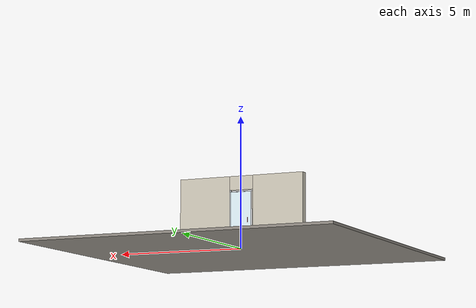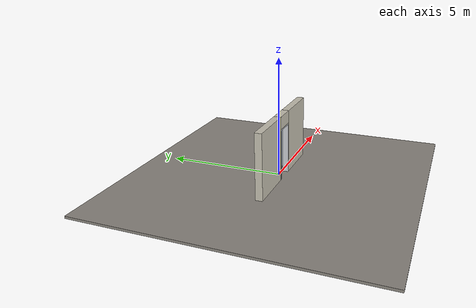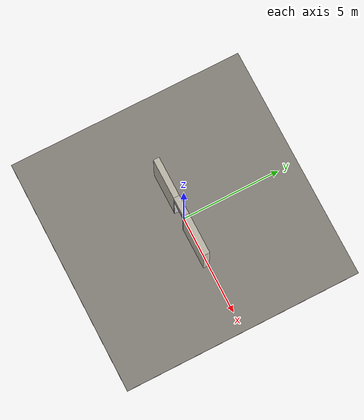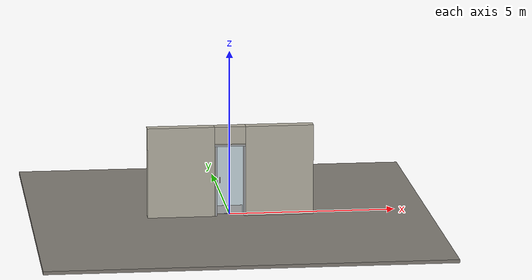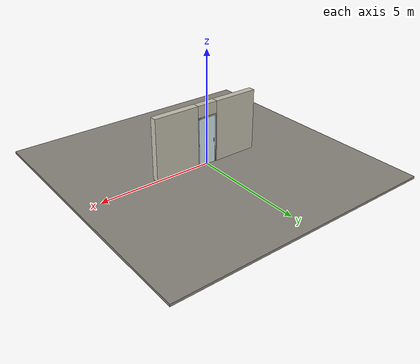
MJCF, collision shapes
<?xml version="1.0" ?>
<mujoco model="db0324_swing_single_simple">
  <compiler angle="radian" meshdir="../../hardware" texturedir="../../textures" autolimits="true" inertiafromgeom="false"/>
  <option timestep="0.002" integrator="implicitfast" cone="elliptic" impratio="10" noslip_iterations="3">
    <flag multiccd="enable"/>
  </option>
  <size memory="16M"/>
  <default>
    <geom condim="4" solref="0.005 1" solimp="0.95 0.99 0.001"/>
    <joint solreflimit="0.005 1" solimplimit="0.95 0.99 0.001"/>
    <tendon solreflimit="0.005 1"/>
    <equality solref="0.002 1"/>
  </default>
  <visual>
    <headlight ambient="0.4 0.4 0.4" diffuse="0.7 0.7 0.7" specular="0.2 0.2 0.2"/>
    <quality shadowsize="4096"/>
    <map znear="0.01" zfar="60"/>
  </visual>
  <asset>
    <mesh name="pull_1e5d69a91a" file="pull_1e5d69a91a.obj"/>
    <material name="mat_floor" rgba="0.55 0.53 0.5 1" specular="0.2" shininess="0.15" reflectance="0"/>
    <material name="mat_wall" rgba="0.78 0.76 0.7 1" specular="0.2" shininess="0.1" reflectance="0"/>
    <material name="mat_leaf" rgba="0.85 0.92 0.95 0.25" specular="0.2" shininess="0.95" reflectance="0.1"/>
    <material name="mat_glass_leaf" rgba="0.85 0.92 0.95 0.25" specular="0.2" shininess="0.95" reflectance="0.1"/>
    <material name="mat_patch" rgba="0.75 0.76 0.77 1" specular="0.8" shininess="0.65" reflectance="0.4"/>
    <material name="mat_hinge" rgba="0.65 0.66 0.68 1" specular="0.74" shininess="0.5" reflectance="0.36"/>
    <material name="mat_op_stainless" rgba="0.75 0.76 0.77 1" specular="0.8" shininess="0.65" reflectance="0.4"/>
    <material name="mat_frame" rgba="0.8 0.81 0.83 1" specular="0.8" shininess="0.6" reflectance="0.4"/>
    <material name="mat_closer" rgba="0.75 0.76 0.77 1" specular="0.8" shininess="0.65" reflectance="0.4"/>
    <material name="mat_kick" rgba="0.75 0.76 0.77 1" specular="0.8" shininess="0.65" reflectance="0.4"/>
    <material name="mat_sign" rgba="0.75 0.76 0.77 1" specular="0.8" shininess="0.65" reflectance="0.4"/>
    <texture name="skybox" type="skybox" builtin="gradient" rgb1="0.6 0.7 0.85" rgb2="0.9 0.92 0.95" width="256" height="256"/>
  </asset>
  <worldbody>
    <light name="sun" pos="1.5 -2.5 4" dir="-0.3 0.5 -0.8" directional="true" diffuse="0.8 0.8 0.8" specular="0.3 0.3 0.3" castshadow="true"/>
    <light name="fill" pos="-1.5 2.5 3" dir="0.3 -0.5 -0.7" directional="true" diffuse="0.35 0.35 0.4" castshadow="false"/>
    <camera name="robot_view" pos="0 -2.758312 1.812087" xyaxes="1 0 0 0 0.26963 0.962964" fovy="52"/>
    <camera name="far_view" pos="0 2.517313 1.812087" xyaxes="-1 0 0 0 -0.26963 0.962964" fovy="52"/>
    <camera name="iso" pos="-2.004737 -2.336262 2.234138" xyaxes="0.741536 -0.670913 0 0.242917 0.268487 0.932151" fovy="46"/>
    <camera name="detail_handle" pos="-0.122 -0.8825 1.347" xyaxes="0.97561 0.219512 0 -0.070934 0.315262 0.94635" fovy="38"/>
    <geom name="floor" type="box" size="6 6 0.05" pos="0 0 -0.05" material="mat_floor" group="0" contype="1" conaffinity="1" friction="0.8 0.005 0.0001" density="2400"/>
    <geom name="wall_left" type="box" size="1.0065 0.15 1.3735" pos="-1.4935 -0.1205 1.3735" material="mat_wall" group="0" contype="1" conaffinity="1" friction="0.6 0.005 0.0001" density="800"/>
    <geom name="wall_right" type="box" size="1.0215 0.15 1.3735" pos="1.4785 -0.1205 1.3735" material="mat_wall" group="0" contype="1" conaffinity="1" friction="0.6 0.005 0.0001" density="800"/>
    <geom name="wall_header" type="box" size="0.472 0.15 0.2625" pos="-0.015 -0.1205 2.4845" material="mat_wall" group="0" contype="1" conaffinity="1" friction="0.6 0.005 0.0001" density="800"/>
    <geom name="pivot_bottom_socket" type="box" size="0.035 0.035 0.0085" pos="0.409 0.0295 -0.0015" material="mat_hinge" group="1" contype="0" conaffinity="0" density="7850"/>
    <geom name="pivot_top_bracket" type="box" size="0.035 0.035 0.0355" pos="0.409 0.0295 2.1865" material="mat_hinge" group="1" contype="0" conaffinity="0" density="7850"/>
    <geom name="jamb_hinge" type="box" size="0.0225 0.15 1.0735" pos="0.4345 -0.1205 1.0735" material="mat_frame" group="0" contype="1" conaffinity="1" friction="0.6 0.005 0.0001" density="300"/>
    <geom name="jamb_strike" type="box" size="0.0225 0.15 1.0735" pos="-0.4345 -0.1205 1.0735" material="mat_frame" group="0" contype="1" conaffinity="1" friction="0.6 0.005 0.0001" density="300"/>
    <geom name="stud_strike" type="box" size="0.015 0.15 1.0735" pos="-0.472 -0.1205 1.0735" material="mat_wall" group="0" contype="1" conaffinity="1" friction="0.6 0.005 0.0001" density="500"/>
    <geom name="jamb_head" type="box" size="0.472 0.15 0.0225" pos="-0.015 -0.1205 2.1695" material="mat_frame" group="0" contype="1" conaffinity="1" friction="0.6 0.005 0.0001" density="300"/>
    <geom name="head_stud" type="box" size="0.472 0.15 0.015" pos="-0.015 -0.1205 2.207" material="mat_wall" group="0" contype="1" conaffinity="1" friction="0.6 0.005 0.0001" density="500"/>
    <geom name="floor_spring_cover" type="box" size="0.17 0.06 0.002" pos="0.292 0 0.002" material="mat_closer" group="1" contype="0" conaffinity="0" density="7900"/>
    <site name="approach_point" pos="0 -1.5 0" quat="1 0 0 0" size="0.05" rgba="0.2 0.9 0.2 0.5" group="4"/>
    <site name="goal_point" pos="0 1.5 0" quat="1 0 0 0" size="0.05" rgba="0.2 0.9 0.2 0.5" group="4"/>
    <site name="door_plane_center" pos="0 0 1.0735" quat="1 0 0 0" size="0.02" rgba="0.2 0.9 0.2 0.5" group="4"/>
    <body name="leaf" pos="0.412 0 0">
      <inertial pos="-0.416329 -0.000783 1.044566" mass="88.498653" quat="-0.499471 0.5004 0.500503 0.499625" diaginertia="4.912378482 34.566824301 39.435004867"/>
      <joint name="leaf_hinge" type="hinge" axis="0 0 -1" pos="-0.003 0.0295 0" limited="true" range="0 1.570796" solreflimit="0.02 1" damping="8.168374" frictionloss="1.826828" stiffness="19.945297" springref="-1.966378" armature="0.02"/>
      <geom name="leaf_glass" type="box" size="0.4065 0.0225 1.067" pos="-0.4125 0 1.076" material="mat_glass_leaf" group="0" contype="1" conaffinity="1" friction="0.4 0.005 0.0001" density="1"/>
      <geom name="leaf_pull_n" type="mesh" mesh="pull_1e5d69a91a" pos="-0.714 -0.0225 1.067" quat="0 0 -0.707107 0.707107" material="mat_op_stainless" group="1" contype="0" conaffinity="0" density="3000"/>
      <geom name="leaf_pull_col_n" type="capsule" size="0.0095 0.08" pos="-0.714 -0.0825 1.067" material="mat_op_stainless" group="3" contype="1" conaffinity="1" rgba="0.8 0.3 0.3 0.25" friction="0.7 0.01 0.0001" density="3000"/>
      <geom name="leaf_pull_p" type="mesh" mesh="pull_1e5d69a91a" pos="-0.714 0.0225 1.067" quat="0 0 0.707107 0.707107" material="mat_op_stainless" group="1" contype="0" conaffinity="0" density="3000"/>
      <geom name="leaf_pull_col_p" type="capsule" size="0.0095 0.08" pos="-0.714 0.0825 1.067" material="mat_op_stainless" group="3" contype="1" conaffinity="1" rgba="0.8 0.3 0.3 0.25" friction="0.7 0.01 0.0001" density="3000"/>
      <geom name="kick_plate_n" type="box" size="0.3765 0.0008 0.125" pos="-0.4125 -0.0233 0.144" material="mat_kick" group="2" contype="0" conaffinity="0" density="7900"/>
      <site name="leaf_pull_grip_n" pos="-0.714 -0.0825 1.067" quat="1 0 0 0" size="0.012" rgba="0.2 0.9 0.2 0.5" group="4"/>
      <site name="leaf_pull_grip_p" pos="-0.714 0.0825 1.067" quat="1 0 0 0" size="0.012" rgba="0.2 0.9 0.2 0.5" group="4"/>
      <site name="leaf_edge_mid" pos="-0.819 0 1.067" quat="1 0 0 0" size="0.02" rgba="0.2 0.9 0.2 0.5" group="4"/>
    </body>
  </worldbody>
  <sensor>
    <jointpos name="leaf_hinge_pos" joint="leaf_hinge"/>
    <jointvel name="leaf_hinge_vel" joint="leaf_hinge"/>
  </sensor>
</mujoco>
